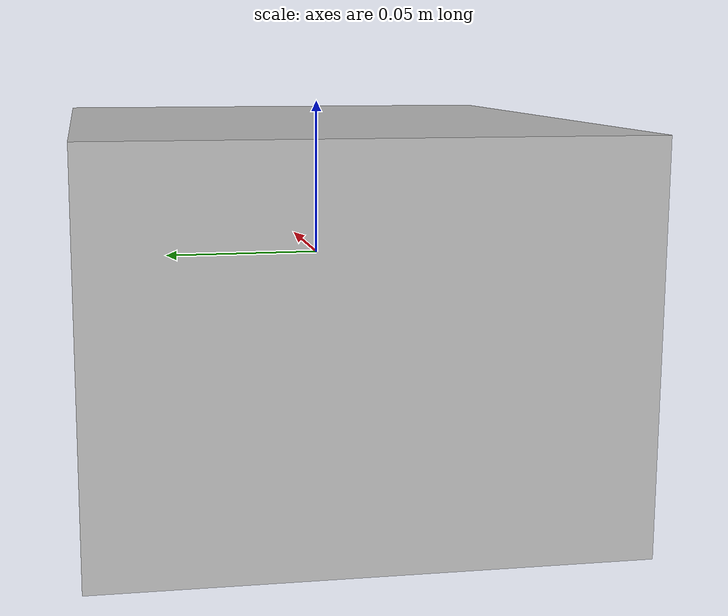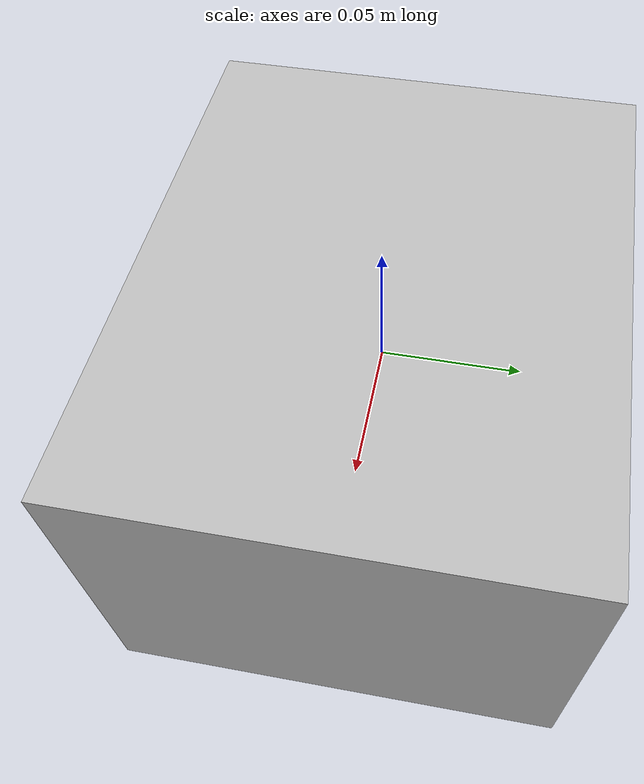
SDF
<?xml version="1.0" ?>
<sdf version="1.6">
    <model name="cardboard_box_green">
        <pose>0 0 0 0 0 0</pose>
        <link name="link">
            <inertial>
                <mass>1.0</mass>
                <inertia>
                    <ixx>0.02</ixx>
                    <ixy>0</ixy>
                    <ixz>0</ixz>
                    <iyy>0.03</iyy>
                    <iyz>0</iyz>
                    <izz>0.04</izz>
                </inertia>
            </inertial>
            <collision name="collision">
                <pose>0 0 -0.015 0 0 0</pose>
                <geometry>
                    <box>
                        <size>0.2 0.16 0.12</size>
                    </box>
                </geometry>
                <surface>
                    <friction>
                        <ode>
                            <mu>1.0</mu>
                            <mu2>1.0</mu2>
                        </ode>
                    </friction>
                    <contact>
                        <ode>
                            <kp>10000000.0</kp>
                            <kd>10000.0</kd>
                            <min_depth>0.001</min_depth>
                            <max_vel>0.1</max_vel>
                        </ode>
                    </contact>
                    <bounce>
                        <restitution_coefficient>0.0</restitution_coefficient>
                        <threshold>1e100</threshold>
                    </bounce>
                </surface>
            </collision>
            <visual name="visual">
                <pose>0 0 -0.075 0 0 0</pose>
                <geometry>
                    <mesh>
                        <uri>meshes/cardboard_box_green.dae</uri>
                        <scale>0.5 0.4 0.3</scale>
                    </mesh>
                </geometry>
            </visual>
        </link>
    </model>
</sdf>
